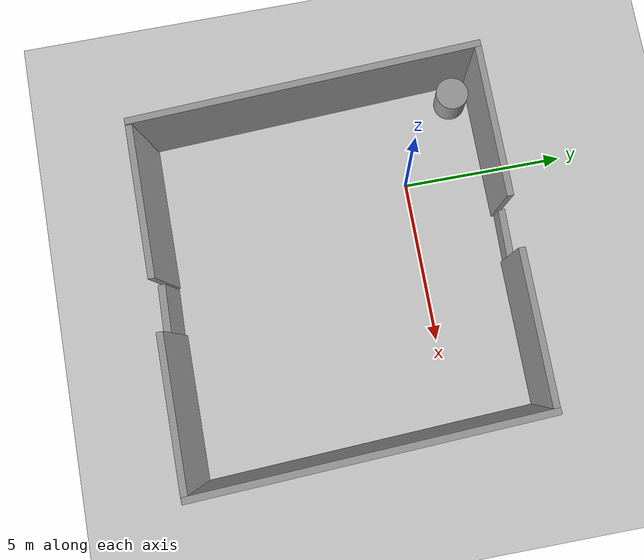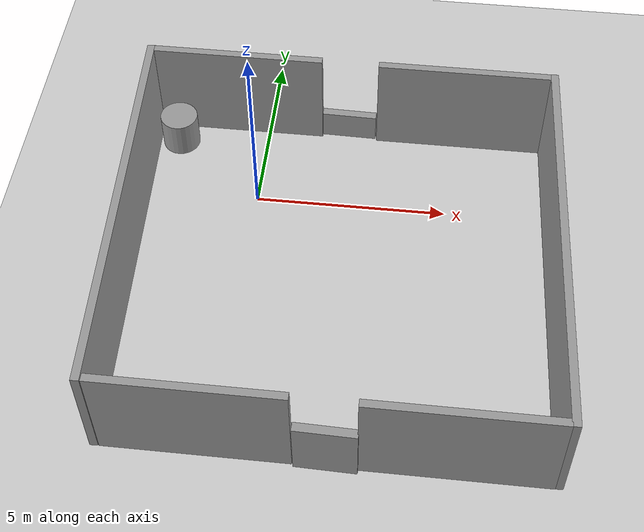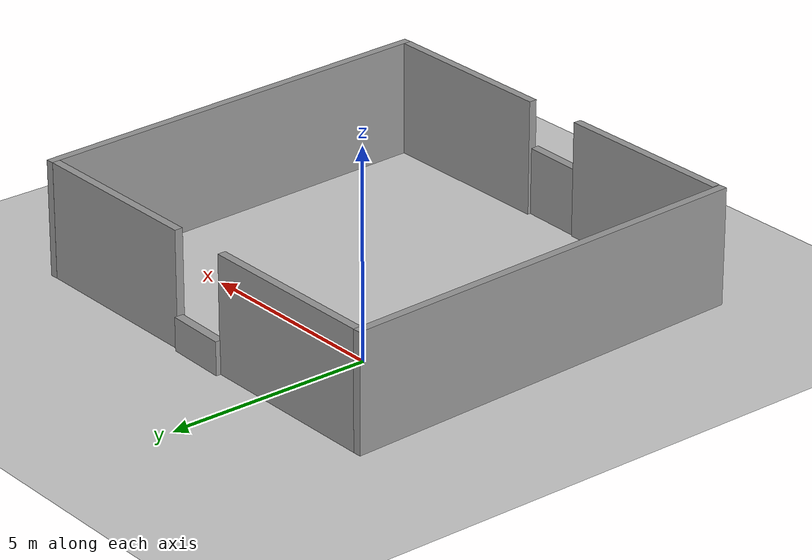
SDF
<sdf version="1.4">
 <world name="default">
  <plugin name="xbot2_clock" filename="libxbot2_gz_clock.so"/>
  <gravity>0 0 -9.81</gravity>
  <model name="ground_plane">
   <static>true</static>
   <link name="link">
    <collision name="collision">
     <geometry><plane><normal>0 0 1</normal><size>100 100</size></plane></geometry>
     <surface><friction><ode><mu>1</mu><mu2>1</mu2></ode></friction></surface>
    </collision>
    <visual name="visual">
     <cast_shadows>false</cast_shadows>
     <geometry><plane><normal>0 0 1</normal><size>100 100</size></plane></geometry>
     <material>
      <script><uri>file://media/materials/scripts/gazebo.material</uri><name>Gazebo/Grey</name></script>
     </material>
    </visual>
   </link>
  </model>
  <model name="grey_wall">
   <link name="link">
    <pose>1.87277 0 1.4 0 -0 0</pose>
    <inertial>
     <mass>1</mass>
     <inertia><ixx>1</ixx><ixy>0</ixy><ixz>0</ixz><iyy>1</iyy><iyz>0</iyz><izz>1</izz></inertia>
    </inertial>
    <visual name="visual">
     <cast_shadows>0</cast_shadows>
     <geometry><box><size>4.5 0.2 2.8</size></box></geometry>
     <material>
      <script>
       <uri>model://grey_wall/materials/scripts</uri>
       <uri>model://grey_wall/materials/textures</uri>
       <name>vrc/grey_wall</name>
      </script>
      <shader type="pixel"><normal_map>__default__</normal_map></shader>
      <ambient>1 1 1 1</ambient>
      <diffuse>1 1 1 1</diffuse>
      <specular>0 0 0 1</specular>
      <emissive>0 0 0 1</emissive>
     </material>
     <pose>-3.0 0 0 0 -0 0</pose>
    </visual>
    <visual name="right_wall">
     <cast_shadows>0</cast_shadows>
     <geometry><box><size>4.5 0.2 2.8</size></box></geometry>
     <material>
      <script>
       <uri>model://grey_wall/materials/scripts</uri>
       <uri>model://grey_wall/materials/textures</uri>
       <name>vrc/grey_wall</name>
      </script>
      <shader type="pixel"><normal_map>__default__</normal_map></shader>
      <ambient>1 1 1 1</ambient>
      <diffuse>1 1 1 1</diffuse>
      <specular>0 0 0 1</specular>
      <emissive>0 0 0 1</emissive>
     </material>
     <pose>3.0 0 0 0 -0 0</pose>
    </visual>
    <visual name="left_wall">
     <cast_shadows>0</cast_shadows>
     <geometry><box><size>4.5 0.2 2.8</size></box></geometry>
     <material>
      <script>
       <uri>model://grey_wall/materials/scripts</uri>
       <uri>model://grey_wall/materials/textures</uri>
       <name>vrc/grey_wall</name>
      </script>
      <shader type="pixel"><normal_map>__default__</normal_map></shader>
      <ambient>1 1 1 1</ambient>
      <diffuse>1 1 1 1</diffuse>
      <specular>0 0 0 1</specular>
      <emissive>0 0 0 1</emissive>
     </material>
     <pose>-3.0 0 0 0 -0 0</pose>
    </visual>
    <collision name="collision_right_wall">
     <pose>3.0 0 0 0 -0 0</pose>
     <geometry><box><size>4.5 0.2 2.8</size></box></geometry>
     <surface>
      <friction>
       <ode><mu>1</mu><mu2>1</mu2><fdir1>0 0 0</fdir1><slip1>0</slip1><slip2>0</slip2></ode>
       <torsional>
        <coefficient>1</coefficient>
        <patch_radius>0</patch_radius>
        <surface_radius>0</surface_radius>
        <use_patch_radius>1</use_patch_radius>
        <ode><slip>0</slip></ode>
       </torsional>
      </friction>
      <bounce><restitution_coefficient>0</restitution_coefficient><threshold>1e+06</threshold></bounce>
      <contact>
       <collide_without_contact>0</collide_without_contact>
       <collide_without_contact_bitmask>1</collide_without_contact_bitmask>
       <collide_bitmask>1</collide_bitmask>
       <ode>
        <soft_cfm>0</soft_cfm>
        <soft_erp>0.2</soft_erp>
        <kp>1e+13</kp>
        <kd>1</kd>
        <max_vel>0.01</max_vel>
        <min_depth>0</min_depth>
       </ode>
       <bullet>
        <split_impulse>1</split_impulse>
        <split_impulse_penetration_threshold>-0.01</split_impulse_penetration_threshold>
        <soft_cfm>0</soft_cfm>
        <soft_erp>0.2</soft_erp>
        <kp>1e+13</kp>
        <kd>1</kd>
       </bullet>
      </contact>
     </surface>
    </collision>
    <collision name="collision_left_wall">
     <pose>-3.0 0 0 0 -0 0</pose>
     <geometry><box><size>4.5 0.2 2.8</size></box></geometry>
     <surface>
      <friction>
       <ode><mu>1</mu><mu2>1</mu2><fdir1>0 0 0</fdir1><slip1>0</slip1><slip2>0</slip2></ode>
       <torsional>
        <coefficient>1</coefficient>
        <patch_radius>0</patch_radius>
        <surface_radius>0</surface_radius>
        <use_patch_radius>1</use_patch_radius>
        <ode><slip>0</slip></ode>
       </torsional>
      </friction>
      <bounce><restitution_coefficient>0</restitution_coefficient><threshold>1e+06</threshold></bounce>
      <contact>
       <collide_without_contact>0</collide_without_contact>
       <collide_without_contact_bitmask>1</collide_without_contact_bitmask>
       <collide_bitmask>1</collide_bitmask>
       <ode>
        <soft_cfm>0</soft_cfm>
        <soft_erp>0.2</soft_erp>
        <kp>1e+13</kp>
        <kd>1</kd>
        <max_vel>0.01</max_vel>
        <min_depth>0</min_depth>
       </ode>
       <bullet>
        <split_impulse>1</split_impulse>
        <split_impulse_penetration_threshold>-0.01</split_impulse_penetration_threshold>
        <soft_cfm>0</soft_cfm>
        <soft_erp>0.2</soft_erp>
        <kp>1e+13</kp>
        <kd>1</kd>
       </bullet>
      </contact>
     </surface>
    </collision>
   </link>
   <static>1</static>
   <pose>0.351124 2.58472 0 0 -0 0</pose>
  </model>
  <model name="grey_wall_0">
   <link name="link">
    <pose>1.87277 0 1.4 0 -0 0</pose>
    <inertial>
     <mass>1</mass>
     <inertia><ixx>1</ixx><ixy>0</ixy><ixz>0</ixz><iyy>1</iyy><iyz>0</iyz><izz>1</izz></inertia>
    </inertial>
    <visual name="visual">
     <cast_shadows>0</cast_shadows>
     <geometry><box><size>4.5 0.2 2.8</size></box></geometry>
     <material>
      <script>
       <uri>model://grey_wall/materials/scripts</uri>
       <uri>model://grey_wall/materials/textures</uri>
       <name>vrc/grey_wall</name>
      </script>
      <shader type="pixel"><normal_map>__default__</normal_map></shader>
      <ambient>1 1 1 1</ambient>
      <diffuse>1 1 1 1</diffuse>
      <specular>0 0 0 1</specular>
      <emissive>0 0 0 1</emissive>
     </material>
     <pose>-3.0 0 0 0 -0 0</pose>
    </visual>
    <visual name="right_wall">
     <cast_shadows>0</cast_shadows>
     <geometry><box><size>4.5 0.2 2.8</size></box></geometry>
     <material>
      <script>
       <uri>model://grey_wall/materials/scripts</uri>
       <uri>model://grey_wall/materials/textures</uri>
       <name>vrc/grey_wall</name>
      </script>
      <shader type="pixel"><normal_map>__default__</normal_map></shader>
      <ambient>1 1 1 1</ambient>
      <diffuse>1 1 1 1</diffuse>
      <specular>0 0 0 1</specular>
      <emissive>0 0 0 1</emissive>
     </material>
     <pose>3.0 0 0 0 -0 0</pose>
    </visual>
    <visual name="left_wall">
     <cast_shadows>0</cast_shadows>
     <geometry><box><size>4.5 0.2 2.8</size></box></geometry>
     <material>
      <script>
       <uri>model://grey_wall/materials/scripts</uri>
       <uri>model://grey_wall/materials/textures</uri>
       <name>vrc/grey_wall</name>
      </script>
      <shader type="pixel"><normal_map>__default__</normal_map></shader>
      <ambient>1 1 1 1</ambient>
      <diffuse>1 1 1 1</diffuse>
      <specular>0 0 0 1</specular>
      <emissive>0 0 0 1</emissive>
     </material>
     <pose>-3.0 0 0 0 -0 0</pose>
    </visual>
    <collision name="collision_right_wall">
     <pose>3.0 0 0 0 -0 0</pose>
     <geometry><box><size>4.5 0.2 2.8</size></box></geometry>
     <surface>
      <friction>
       <ode><mu>1</mu><mu2>1</mu2><fdir1>0 0 0</fdir1><slip1>0</slip1><slip2>0</slip2></ode>
       <torsional>
        <coefficient>1</coefficient>
        <patch_radius>0</patch_radius>
        <surface_radius>0</surface_radius>
        <use_patch_radius>1</use_patch_radius>
        <ode><slip>0</slip></ode>
       </torsional>
      </friction>
      <bounce><restitution_coefficient>0</restitution_coefficient><threshold>1e+06</threshold></bounce>
      <contact>
       <collide_without_contact>0</collide_without_contact>
       <collide_without_contact_bitmask>1</collide_without_contact_bitmask>
       <collide_bitmask>1</collide_bitmask>
       <ode>
        <soft_cfm>0</soft_cfm>
        <soft_erp>0.2</soft_erp>
        <kp>1e+13</kp>
        <kd>1</kd>
        <max_vel>0.01</max_vel>
        <min_depth>0</min_depth>
       </ode>
       <bullet>
        <split_impulse>1</split_impulse>
        <split_impulse_penetration_threshold>-0.01</split_impulse_penetration_threshold>
        <soft_cfm>0</soft_cfm>
        <soft_erp>0.2</soft_erp>
        <kp>1e+13</kp>
        <kd>1</kd>
       </bullet>
      </contact>
     </surface>
    </collision>
    <collision name="collision_left_wall">
     <pose>-3.0 0 0 0 -0 0</pose>
     <geometry><box><size>4.5 0.2 2.8</size></box></geometry>
     <surface>
      <friction>
       <ode><mu>1</mu><mu2>1</mu2><fdir1>0 0 0</fdir1><slip1>0</slip1><slip2>0</slip2></ode>
       <torsional>
        <coefficient>1</coefficient>
        <patch_radius>0</patch_radius>
        <surface_radius>0</surface_radius>
        <use_patch_radius>1</use_patch_radius>
        <ode><slip>0</slip></ode>
       </torsional>
      </friction>
      <bounce><restitution_coefficient>0</restitution_coefficient><threshold>1e+06</threshold></bounce>
      <contact>
       <collide_without_contact>0</collide_without_contact>
       <collide_without_contact_bitmask>1</collide_without_contact_bitmask>
       <collide_bitmask>1</collide_bitmask>
       <ode>
        <soft_cfm>0</soft_cfm>
        <soft_erp>0.2</soft_erp>
        <kp>1e+13</kp>
        <kd>1</kd>
        <max_vel>0.01</max_vel>
        <min_depth>0</min_depth>
       </ode>
       <bullet>
        <split_impulse>1</split_impulse>
        <split_impulse_penetration_threshold>-0.01</split_impulse_penetration_threshold>
        <soft_cfm>0</soft_cfm>
        <soft_erp>0.2</soft_erp>
        <kp>1e+13</kp>
        <kd>1</kd>
       </bullet>
      </contact>
     </surface>
    </collision>
   </link>
   <static>1</static>
   <pose>0.816426 -7.7073 0 0 -0 0</pose>
  </model>
  <model name="grey_wall_1">
   <link name="link">
    <pose>1.87277 0 1.4 0 -0 0</pose>
    <inertial>
     <mass>1</mass>
     <inertia><ixx>1</ixx><ixy>0</ixy><ixz>0</ixz><iyy>1</iyy><iyz>0</iyz><izz>1</izz></inertia>
    </inertial>
    <visual name="visual">
     <cast_shadows>0</cast_shadows>
     <geometry><box><size>10.5 0.2 2.8</size></box></geometry>
     <material>
      <script>
       <uri>model://grey_wall/materials/scripts</uri>
       <uri>model://grey_wall/materials/textures</uri>
       <name>vrc/grey_wall</name>
      </script>
      <shader type="pixel"><normal_map>__default__</normal_map></shader>
      <ambient>1 1 1 1</ambient>
      <diffuse>1 1 1 1</diffuse>
      <specular>0 0 0 1</specular>
      <emissive>0 0 0 1</emissive>
     </material>
    </visual>
    <collision name="collision">
     <geometry><box><size>10.5 0.2 2.8</size></box></geometry>
     <surface>
      <friction>
       <ode><mu>1</mu><mu2>1</mu2><fdir1>0 0 0</fdir1><slip1>0</slip1><slip2>0</slip2></ode>
       <torsional>
        <coefficient>1</coefficient>
        <patch_radius>0</patch_radius>
        <surface_radius>0</surface_radius>
        <use_patch_radius>1</use_patch_radius>
        <ode><slip>0</slip></ode>
       </torsional>
      </friction>
      <bounce><restitution_coefficient>0</restitution_coefficient><threshold>1e+06</threshold></bounce>
      <contact>
       <collide_without_contact>0</collide_without_contact>
       <collide_without_contact_bitmask>1</collide_without_contact_bitmask>
       <collide_bitmask>1</collide_bitmask>
       <ode>
        <soft_cfm>0</soft_cfm>
        <soft_erp>0.2</soft_erp>
        <kp>1e+13</kp>
        <kd>1</kd>
        <max_vel>0.01</max_vel>
        <min_depth>0</min_depth>
       </ode>
       <bullet>
        <split_impulse>1</split_impulse>
        <split_impulse_penetration_threshold>-0.01</split_impulse_penetration_threshold>
        <soft_cfm>0</soft_cfm>
        <soft_erp>0.2</soft_erp>
        <kp>1e+13</kp>
        <kd>1</kd>
       </bullet>
      </contact>
     </surface>
    </collision>
   </link>
   <static>1</static>
   <pose>-2.98273 -0.691657 0 0 0 -1.52789</pose>
  </model>
  <model name="grey_wall_1_clone">
   <link name="link">
    <pose>1.87277 0 1.4 0 -0 0</pose>
    <inertial>
     <mass>1</mass>
     <inertia><ixx>1</ixx><ixy>0</ixy><ixz>0</ixz><iyy>1</iyy><iyz>0</iyz><izz>1</izz></inertia>
    </inertial>
    <visual name="visual">
     <cast_shadows>0</cast_shadows>
     <geometry><box><size>10.5 0.2 2.8</size></box></geometry>
     <material>
      <script>
       <uri>model://grey_wall/materials/scripts</uri>
       <uri>model://grey_wall/materials/textures</uri>
       <name>vrc/grey_wall</name>
      </script>
      <shader type="pixel"><normal_map>__default__</normal_map></shader>
      <ambient>1 1 1 1</ambient>
      <diffuse>1 1 1 1</diffuse>
      <specular>0 0 0 1</specular>
      <emissive>0 0 0 1</emissive>
     </material>
    </visual>
    <collision name="collision">
     <geometry><box><size>10.5 0.2 2.8</size></box></geometry>
     <surface>
      <friction>
       <ode><mu>1</mu><mu2>1</mu2><fdir1>0 0 0</fdir1><slip1>0</slip1><slip2>0</slip2></ode>
       <torsional>
        <coefficient>1</coefficient>
        <patch_radius>0</patch_radius>
        <surface_radius>0</surface_radius>
        <use_patch_radius>1</use_patch_radius>
        <ode><slip>0</slip></ode>
       </torsional>
      </friction>
      <bounce><restitution_coefficient>0</restitution_coefficient><threshold>1e+06</threshold></bounce>
      <contact>
       <collide_without_contact>0</collide_without_contact>
       <collide_without_contact_bitmask>1</collide_without_contact_bitmask>
       <collide_bitmask>1</collide_bitmask>
       <ode>
        <soft_cfm>0</soft_cfm>
        <soft_erp>0.2</soft_erp>
        <kp>1e+13</kp>
        <kd>1</kd>
        <max_vel>0.01</max_vel>
        <min_depth>0</min_depth>
       </ode>
       <bullet>
        <split_impulse>1</split_impulse>
        <split_impulse_penetration_threshold>-0.01</split_impulse_penetration_threshold>
        <soft_cfm>0</soft_cfm>
        <soft_erp>0.2</soft_erp>
        <kp>1e+13</kp>
        <kd>1</kd>
       </bullet>
      </contact>
     </surface>
    </collision>
   </link>
   <static>1</static>
   <pose>7.71298 -0.684087 0 0 0 -1.52789</pose>
  </model>
  <model name="unit_box_clone">
   <pose>2.71343 -7.77517 0.81443 0.001159 0 -0.024337</pose>
   <link name="link">
    <inertial>
     <mass>1</mass>
     <inertia>
      <ixx>0.166667</ixx>
      <ixy>0</ixy>
      <ixz>0</ixz>
      <iyy>0.166667</iyy>
      <iyz>0</iyz>
      <izz>0.166667</izz>
     </inertia>
    </inertial>
    <collision name="collision"><geometry><box><size>1.48961 0.224037 1.62859</size></box></geometry></collision>
    <visual name="visual">
     <geometry><box><size>1.48961 0.224037 1.62859</size></box></geometry>
     <material>
      <script><name>Gazebo/Grey</name><uri>file://media/materials/scripts/gazebo.material</uri></script>
     </material>
    </visual>
   </link>
  </model>
  <model name="unit_box_clone">
   <pose>2.69245 -7.68949 0.427713 0 0 -0.021439</pose>
   <scale>1 1 0.525257</scale>
   <link name="link">
    <pose>2.69245 -7.68949 0.427713 0 0 -0.021439</pose>
    <velocity>0 0 0 0 -0 0</velocity>
    <acceleration>3.51256 0.451926 -5.96666 2.087 1.21237 3.13975</acceleration>
    <wrench>3.51256 0.451926 -5.96666 0 -0 0</wrench>
   </link>
  </model>
  <model name="unit_box_clone_clone">
   <pose>2.19647 2.67252 0.4 0 0 -0.021618</pose>
   <link name="link">
    <inertial>
     <mass>1</mass>
     <inertia>
      <ixx>0.166667</ixx>
      <ixy>0</ixy>
      <ixz>0</ixz>
      <iyy>0.166667</iyy>
      <iyz>0</iyz>
      <izz>0.166667</izz>
     </inertia>
    </inertial>
    <collision name="collision"><geometry><box><size>1.48961 0.224037 0.8</size></box></geometry></collision>
    <visual name="visual">
     <geometry><box><size>1.48961 0.224037 0.8</size></box></geometry>
     <material>
      <script><name>Gazebo/Grey</name><uri>file://media/materials/scripts/gazebo.material</uri></script>
     </material>
    </visual>
   </link>
  </model>
  <model name="chair_3">
   <pose>1.02133 -0.968339 0 0 -0 0</pose>
   <scale>1 1 1</scale>
   <link name="link_4">
    <pose>0.738876 -1.22773 0 0 -0 0</pose>
    <velocity>0 0 0 0 -0 0</velocity>
    <acceleration>0 0 0 0 -0 0</acceleration>
    <wrench>0 0 0 0 -0 0</wrench>
   </link>
  </model>
  <model name="chair_3_1">
   <pose>4.92624 -2.52406 0 0 0 -1.59975</pose>
   <scale>1 1 1</scale>
   <link name="link_4">
    <pose>4.67513 -2.23421 0 0 0 -1.59975</pose>
    <velocity>0 0 0 0 -0 0</velocity>
    <acceleration>0 0 0 0 -0 0</acceleration>
    <wrench>0 0 0 0 -0 0</wrench>
   </link>
  </model>
  <model name="unit_box_clone_clone">
   <pose>2.22052 2.56062 0.645173 0 0 -0.021541</pose>
   <scale>1 1 0.792313</scale>
   <link name="link">
    <pose>2.22052 2.56062 0.645173 0 0 -0.021541</pose>
    <velocity>0 0 0 0 -0 0</velocity>
    <acceleration>4.30314 0.553112 -4.60556 -0.855065 0.386885 -0.001889</acceleration>
    <wrench>4.30314 0.553112 -4.60556 0 -0 0</wrench>
   </link>
  </model>
  <model name="unit_cylinder">
   <pose>-2.41591 1.90099 0.5 0 -0 0</pose>
   <link name="link">
    <inertial>
     <mass>1</mass>
     <inertia><ixx>0.145833</ixx><ixy>0</ixy><ixz>0</ixz><iyy>0.145833</iyy><iyz>0</iyz><izz>0.125</izz></inertia>
    </inertial>
    <collision name="collision">
     <geometry><cylinder><radius>0.5</radius><length>1</length></cylinder></geometry>
    </collision>
    <visual name="visual">
     <geometry><cylinder><radius>0.5</radius><length>1</length></cylinder></geometry>
     <material>
      <script><name>Gazebo/Grey</name><uri>file://media/materials/scripts/gazebo.material</uri></script>
     </material>
    </visual>
   </link>
  </model>
  <model name="unit_cylinder">
   <pose>-1.56925 0.810067 0.501218 0 -0 0</pose>
   <scale>1.98417 1.98417 1.00244</scale>
   <link name="link">
    <pose>-1.56925 0.810067 0.501218 0 -0 0</pose>
    <velocity>0 0 0 0 -0 0</velocity>
    <acceleration>0 -0 -0 0 -0 0</acceleration>
    <wrench>0 -0 -0 0 -0 0</wrench>
   </link>
  </model>
  <include><uri>model://sun</uri></include>
  <physics name="update_rate" type="ode">
   <real_time_update_rate>4000</real_time_update_rate>
   <max_step_size>0.00025</max_step_size>
   <max_contacts>5</max_contacts>
   <bullet>
    <solver><iters>100</iters><sor>1.55</sor></solver>
    <constraints><contact_surface_layer>0.2</contact_surface_layer><cfm>0.005</cfm><erp>0.2</erp></constraints>
   </bullet>
   <ode>
    <solver><iters>50</iters><sor>1.20</sor></solver>
    <constraints>
     <contact_surface_layer>0.0002</contact_surface_layer>
     <contact_max_correcting_vel>500</contact_max_correcting_vel>
     <cfm>0.000001</cfm>
     <erp>0.3</erp>
    </constraints>
   </ode>
  </physics>
 </world>
</sdf>
